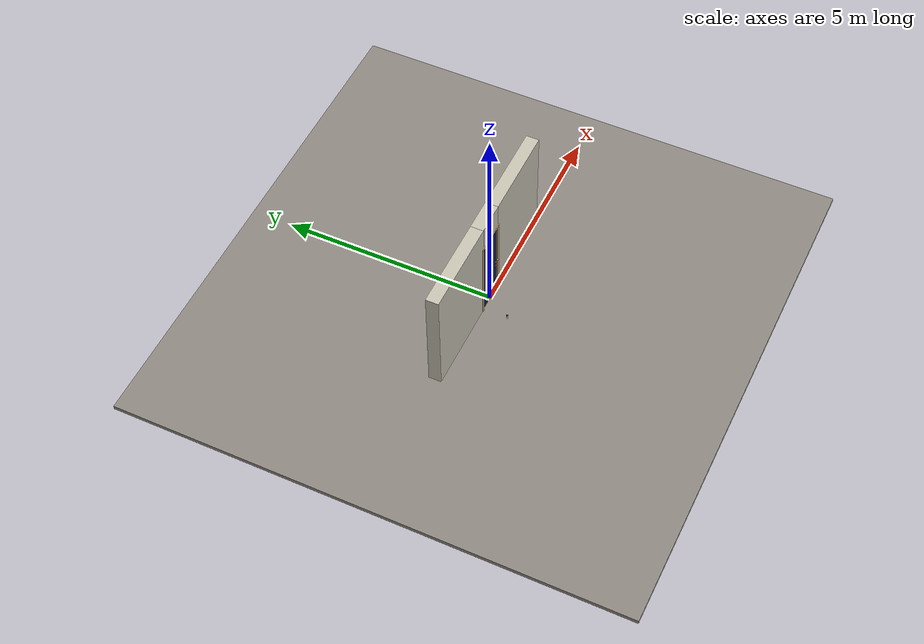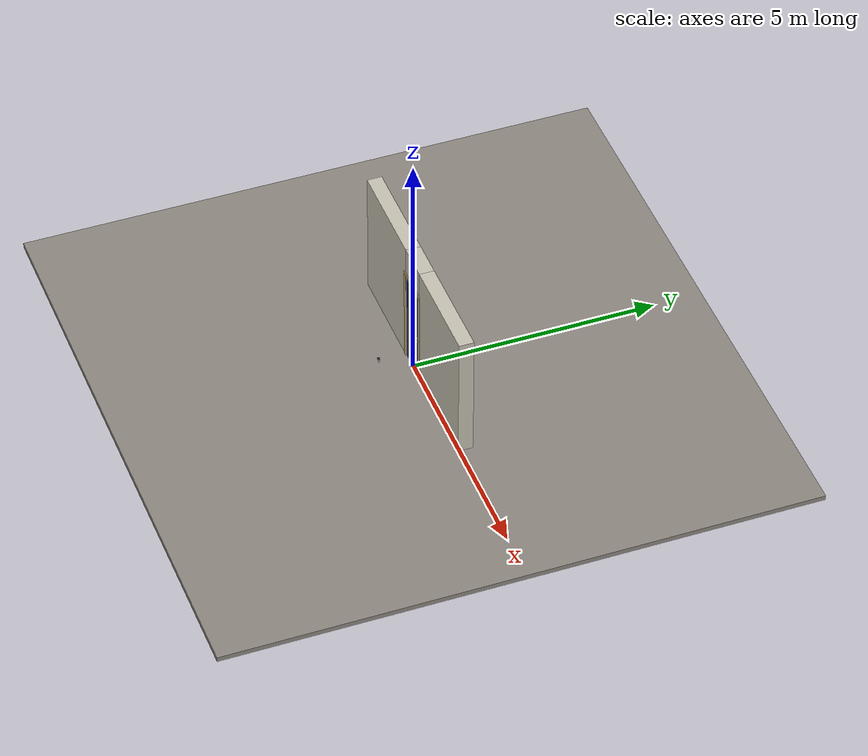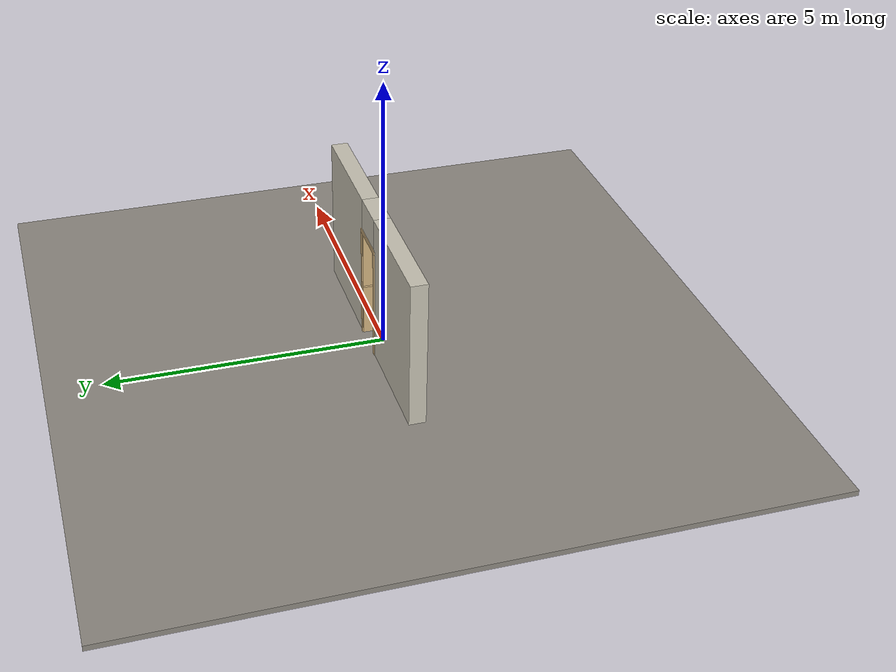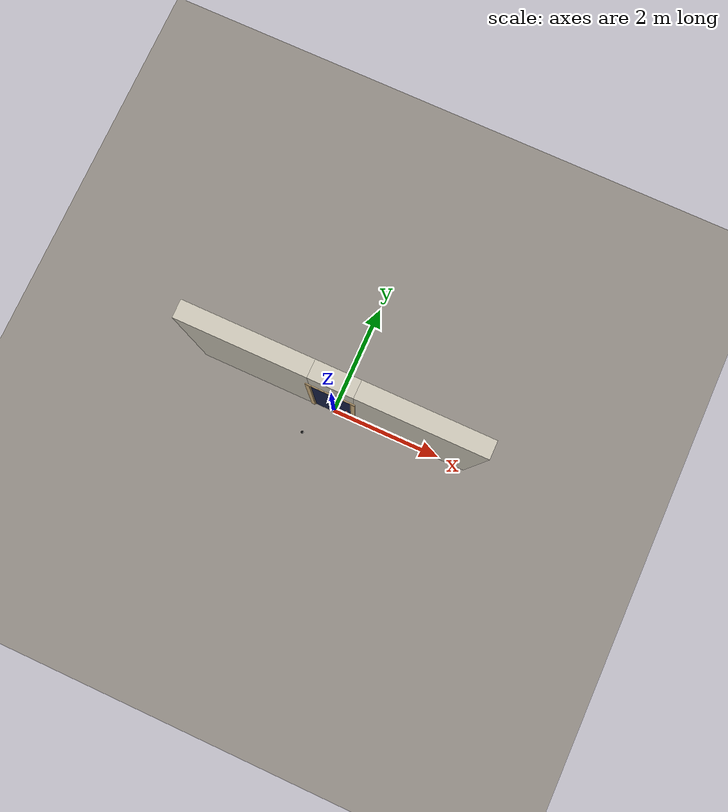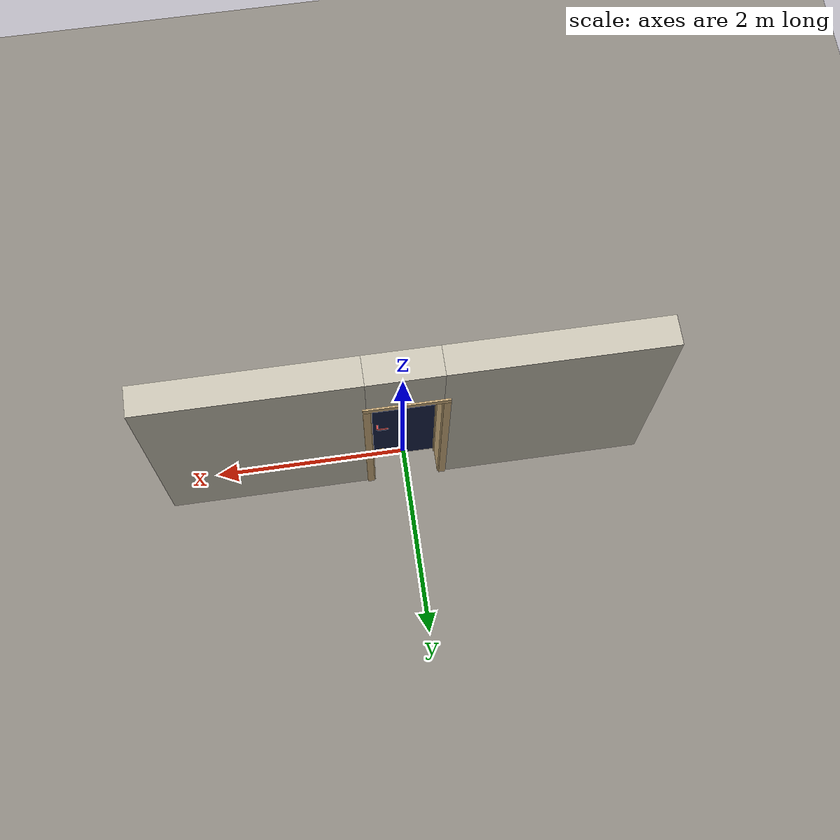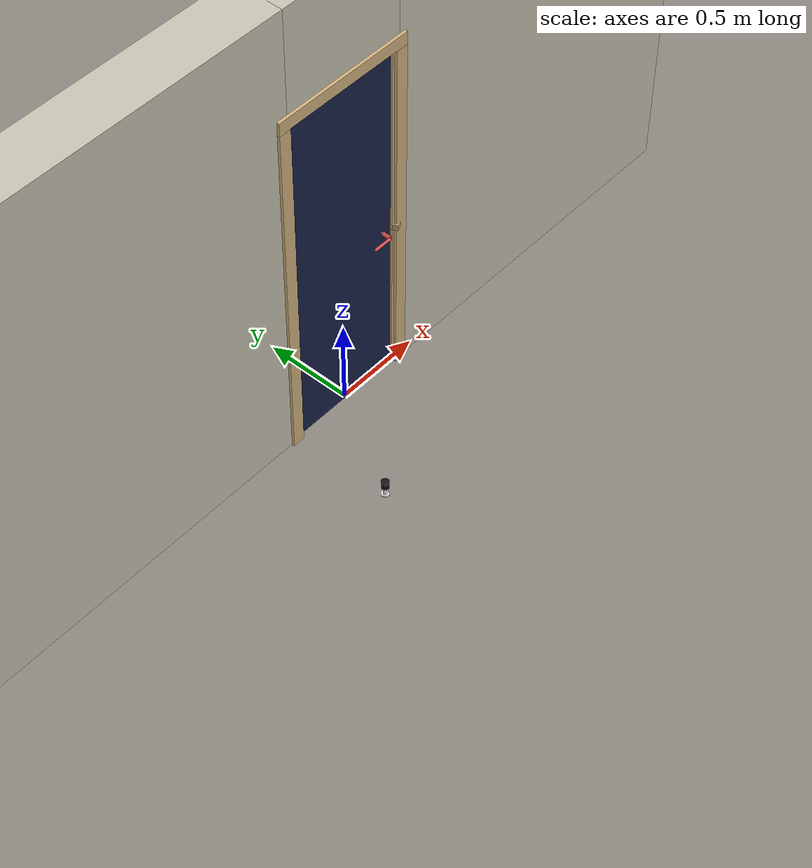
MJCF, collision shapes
<?xml version="1.0" ?>
<mujoco model="db0244_swing_single_full">
  <compiler angle="radian" meshdir="../../hardware" texturedir="../../textures" autolimits="true" inertiafromgeom="false"/>
  <option timestep="0.002" integrator="implicitfast" cone="elliptic" impratio="10" noslip_iterations="3">
    <flag multiccd="enable"/>
  </option>
  <size memory="16M"/>
  <default>
    <geom condim="4" solref="0.005 1" solimp="0.95 0.99 0.001"/>
    <joint solreflimit="0.005 1" solimplimit="0.95 0.99 0.001"/>
    <tendon solreflimit="0.005 1"/>
    <equality solref="0.002 1"/>
  </default>
  <visual>
    <headlight ambient="0.4 0.4 0.4" diffuse="0.7 0.7 0.7" specular="0.2 0.2 0.2"/>
    <quality shadowsize="4096"/>
    <map znear="0.01" zfar="60"/>
  </visual>
  <asset>
    <mesh name="hinge_96510cf394" file="hinge_96510cf394.obj"/>
    <mesh name="hinge_jamb_7fd4ca52b2" file="hinge_jamb_7fd4ca52b2.obj"/>
    <mesh name="lever_748f08efca" file="lever_748f08efca.obj"/>
    <material name="mat_floor" rgba="0.55 0.53 0.5 1" specular="0.2" shininess="0.15" reflectance="0"/>
    <material name="mat_wall" rgba="0.78 0.76 0.7 1" specular="0.2" shininess="0.1" reflectance="0"/>
    <material name="mat_leaf" rgba="0.09 0.13 0.28 1" specular="0.2" shininess="0.56" reflectance="0"/>
    <material name="mat_hinge" rgba="0.65 0.66 0.68 1" specular="0.74" shininess="0.5" reflectance="0.36"/>
    <material name="mat_op_chrome" rgba="0.9 0.9 0.92 1" specular="0.8" shininess="0.9" reflectance="0.4"/>
    <material name="mat_trim" rgba="0.85 0.66 0.3 1" specular="0.8" shininess="0.75" reflectance="0.4"/>
    <material name="mat_bolt" rgba="0.85 0.66 0.3 1" specular="0.8" shininess="0.75" reflectance="0.4"/>
    <material name="mat_frame" rgba="0.82 0.7 0.5 1" specular="0.2" shininess="0.45" reflectance="0"/>
    <material name="mat_kickdown" rgba="0.85 0.66 0.3 1" specular="0.8" shininess="0.75" reflectance="0.4"/>
    <material name="mat_kickdown_pad" rgba="0.92 0.92 0.9 1" specular="0.2" shininess="0.6" reflectance="0"/>
    <material name="mat_bumper_stop" rgba="0.08 0.08 0.08 1" specular="0.2" shininess="0.1" reflectance="0"/>
    <material name="mat_stop_base" rgba="0.9 0.9 0.92 1" specular="0.8" shininess="0.9" reflectance="0.4"/>
    <texture name="skybox" type="skybox" builtin="gradient" rgb1="0.6 0.7 0.85" rgb2="0.9 0.92 0.95" width="256" height="256"/>
  </asset>
  <worldbody>
    <light name="sun" pos="1.5 -2.5 4" dir="-0.3 0.5 -0.8" directional="true" diffuse="0.8 0.8 0.8" specular="0.3 0.3 0.3" castshadow="true"/>
    <light name="fill" pos="-1.5 2.5 3" dir="0.3 -0.5 -0.7" directional="true" diffuse="0.35 0.35 0.4" castshadow="false"/>
    <camera name="robot_view" pos="0 -2.416687 1.734312" xyaxes="1 0 0 0 0.26963 0.962964" fovy="52"/>
    <camera name="far_view" pos="0 2.667687 1.734312" xyaxes="-1 0 0 0 -0.26963 0.962964" fovy="52"/>
    <camera name="iso" pos="1.932062 -2.009937 2.141063" xyaxes="0.741536 0.670913 0 -0.242917 0.268487 0.932151" fovy="46"/>
    <camera name="detail_handle" pos="0.3599 -0.8725 1.245" xyaxes="0.97561 0.219512 0 -0.070934 0.315262 0.94635" fovy="38"/>
    <geom name="floor" type="box" size="6 6 0.05" pos="0 0 -0.05" material="mat_floor" group="0" contype="1" conaffinity="1" friction="0.8 0.005 0.0001" density="2400"/>
    <geom name="wall_left" type="box" size="1.07375 0.15 1.35" pos="-1.42625 0.1255 1.35" material="mat_wall" group="0" contype="1" conaffinity="1" friction="0.6 0.005 0.0001" density="800"/>
    <geom name="wall_right" type="box" size="1.05875 0.15 1.35" pos="1.44125 0.1255 1.35" material="mat_wall" group="0" contype="1" conaffinity="1" friction="0.6 0.005 0.0001" density="800"/>
    <geom name="wall_header" type="box" size="0.3675 0.15 0.303" pos="0.015 0.1255 2.397" material="mat_wall" group="0" contype="1" conaffinity="1" friction="0.6 0.005 0.0001" density="800"/>
    <geom name="hinge_0_jamb" type="mesh" mesh="hinge_jamb_7fd4ca52b2" pos="-0.3305 -0.0245 0.259" material="mat_hinge" group="1" contype="0" conaffinity="0" density="7850"/>
    <geom name="hinge_1_jamb" type="mesh" mesh="hinge_jamb_7fd4ca52b2" pos="-0.3305 -0.0245 1.025" material="mat_hinge" group="1" contype="0" conaffinity="0" density="7850"/>
    <geom name="hinge_2_jamb" type="mesh" mesh="hinge_jamb_7fd4ca52b2" pos="-0.3305 -0.0245 1.861" material="mat_hinge" group="1" contype="0" conaffinity="0" density="7850"/>
    <geom name="jamb_hinge" type="box" size="0.0095 0.15 1.0225" pos="-0.343 0.1255 1.0225" material="mat_frame" group="0" contype="1" conaffinity="1" friction="0.6 0.005 0.0001" density="400"/>
    <geom name="strike_965_wall_n" type="box" size="0.0245 0.133825 0.0167" pos="0.358 0.141675 0.965" material="mat_frame" group="0" contype="1" conaffinity="1" friction="0.6 0.005 0.0001" density="400"/>
    <geom name="strike_965_wall_p" type="box" size="0.0245 0.008 0.0167" pos="0.358 -0.01585 0.965" material="mat_frame" group="0" contype="1" conaffinity="1" friction="0.6 0.005 0.0001" density="400"/>
    <geom name="strike_965_ramp" type="box" size="0.0245 0.01649 0.0167" pos="0.362636 -0.028673 0.965" quat="0.977148 0 0 0.212558" material="mat_frame" group="0" contype="1" conaffinity="1" friction="0.12 0.005 0.0001" density="400"/>
    <geom name="strike_965_back" type="box" size="0.01615 0.00785 0.0167" pos="0.36635 0 0.965" material="mat_frame" group="0" contype="1" conaffinity="1" friction="0.6 0.005 0.0001" density="400"/>
    <geom name="jamb_strike_0" type="box" size="0.0245 0.15 0.47415" pos="0.358 0.1255 0.47415" material="mat_frame" group="0" contype="1" conaffinity="1" friction="0.6 0.005 0.0001" density="400"/>
    <geom name="jamb_strike_1" type="box" size="0.0245 0.15 0.53165" pos="0.358 0.1255 1.51335" material="mat_frame" group="0" contype="1" conaffinity="1" friction="0.6 0.005 0.0001" density="400"/>
    <geom name="jamb_head" type="box" size="0.3675 0.15 0.0095" pos="0.015 0.1255 2.0545" material="mat_frame" group="0" contype="1" conaffinity="1" friction="0.6 0.005 0.0001" density="400"/>
    <geom name="head_stud" type="box" size="0.3675 0.15 0.015" pos="0.015 0.1255 2.079" material="mat_wall" group="0" contype="1" conaffinity="1" friction="0.6 0.005 0.0001" density="500"/>
    <geom name="stop_hinge" type="box" size="0.0055 0.016 1.0225" pos="-0.328 0.034 1.0225" material="mat_frame" group="0" contype="1" conaffinity="1" friction="0.6 0.005 0.0001" density="400"/>
    <geom name="stop_strike" type="box" size="0.0055 0.016 1.0225" pos="0.328 0.034 1.0225" material="mat_frame" group="0" contype="1" conaffinity="1" friction="0.6 0.005 0.0001" density="400"/>
    <geom name="stop_head" type="box" size="0.3335 0.016 0.0055" pos="0 0.034 2.0395" material="mat_frame" group="0" contype="1" conaffinity="1" friction="0.6 0.005 0.0001" density="400"/>
    <geom name="casing_l_n" type="box" size="0.035 0.008 1.032" pos="-0.3825 -0.0325 1.0225" material="mat_frame" group="2" contype="0" conaffinity="0" density="400"/>
    <geom name="casing_r_n" type="box" size="0.035 0.008 1.032" pos="0.3825 -0.0325 1.0225" material="mat_frame" group="2" contype="0" conaffinity="0" density="400"/>
    <geom name="casing_h_n" type="box" size="0.4175 0.008 0.035" pos="0 -0.0325 2.094" material="mat_frame" group="2" contype="0" conaffinity="0" density="400"/>
    <geom name="casing_l_p" type="box" size="0.035 0.008 1.032" pos="-0.3825 0.2835 1.0225" material="mat_frame" group="2" contype="0" conaffinity="0" density="400"/>
    <geom name="casing_r_p" type="box" size="0.035 0.008 1.032" pos="0.3825 0.2835 1.0225" material="mat_frame" group="2" contype="0" conaffinity="0" density="400"/>
    <geom name="casing_h_p" type="box" size="0.4175 0.008 0.035" pos="0 0.2835 2.094" material="mat_frame" group="2" contype="0" conaffinity="0" density="400"/>
    <geom name="door_stop_base" type="cylinder" size="0.022 0.003" pos="-0.3465 -0.5855 0.003" material="mat_stop_base" group="0" contype="1" conaffinity="1" friction="0.6 0.005 0.0001" density="7850"/>
    <geom name="door_stop_post" type="cylinder" size="0.012 0.0245" pos="-0.3465 -0.5855 0.0305" material="mat_stop_base" group="0" contype="1" conaffinity="1" friction="0.6 0.005 0.0001" density="7850"/>
    <geom name="door_stop_bumper" type="cylinder" size="0.022 0.02" pos="-0.3465 -0.5855 0.075" material="mat_bumper_stop" group="0" contype="1" conaffinity="1" friction="0.6 0.005 0.0001" density="1100"/>
    <site name="approach_point" pos="0 -1.5 0" quat="1 0 0 0" size="0.05" rgba="0.2 0.9 0.2 0.5" group="4"/>
    <site name="goal_point" pos="0 1.5 0" quat="1 0 0 0" size="0.05" rgba="0.2 0.9 0.2 0.5" group="4"/>
    <site name="door_plane_center" pos="0 0 1.0225" quat="1 0 0 0" size="0.02" rgba="0.2 0.9 0.2 0.5" group="4"/>
    <body name="leaf" pos="-0.3335 0 0">
      <inertial pos="0.337581 0.000997 0.994549" mass="36.013174" quat="-0.497142 0.49186 0.50674 0.50412" diaginertia="1.357487911 12.920706884 14.268383611"/>
      <joint name="leaf_hinge" type="hinge" axis="0 0 -1" pos="0.003 -0.0245 0" limited="true" range="0 1.570796" damping="0.119633" frictionloss="0.901759" armature="0.02"/>
      <geom name="leaf_slab" type="box" size="0.33 0.0175 1.016" pos="0.333 0 1.025" material="mat_leaf" group="0" contype="1" conaffinity="1" friction="0.4 0.005 0.0001" density="1"/>
      <geom name="hinge_0" type="mesh" mesh="hinge_96510cf394" pos="0.003 -0.0245 0.259" material="mat_hinge" group="1" contype="0" conaffinity="0" density="7850"/>
      <geom name="hinge_1" type="mesh" mesh="hinge_96510cf394" pos="0.003 -0.0245 1.025" material="mat_hinge" group="1" contype="0" conaffinity="0" density="7850"/>
      <geom name="hinge_2" type="mesh" mesh="hinge_96510cf394" pos="0.003 -0.0245 1.861" material="mat_hinge" group="1" contype="0" conaffinity="0" density="7850"/>
      <geom name="leaf_latch_bolt_faceplate" type="box" size="0.0006 0.01235 0.0267" pos="0.6624 0 0.965" material="mat_bolt" group="1" contype="0" conaffinity="0" density="8500"/>
      <geom name="kickdown_housing" type="box" size="0.022 0.016 0.045" pos="0.563 0.0335 0.169" material="mat_kickdown" group="2" contype="0" conaffinity="0" density="8500"/>
      <geom name="kickdown_arm" type="box" size="0.012 0.006 0.045" pos="0.563 0.0295 0.104" material="mat_kickdown" group="2" contype="0" conaffinity="0" density="8500"/>
      <geom name="kickdown_pad" type="cylinder" size="0.014 0.006" pos="0.563 0.0295 0.061" material="mat_kickdown_pad" group="2" contype="0" conaffinity="0" density="1200"/>
      <site name="leaf_edge_mid" pos="0.663 0 1.016" quat="1 0 0 0" size="0.02" rgba="0.2 0.9 0.2 0.5" group="4"/>
      <body name="leaf_handle" pos="0.603 0 0.965">
        <inertial pos="-0.024417 0 0" mass="0.839807" quat="0.707107 0 0 -0.707107" diaginertia="0.001182467 0.002815434 0.003861215"/>
        <joint name="leaf_handle_hinge" type="hinge" axis="0 -1 0" limited="true" range="0 0.87" damping="0.205084" frictionloss="0.04" stiffness="0.9" springref="-0.444444" armature="0.01"/>
        <geom name="leaf_handle_spindle" type="cylinder" size="0.006 0.0255" pos="0 0 0" quat="0.707107 -0.707107 0 0" material="mat_op_chrome" group="1" contype="0" conaffinity="0" density="7850"/>
        <geom name="leaf_handle_lever_n" type="mesh" mesh="lever_748f08efca" pos="0 -0.0175 0" quat="0.707107 0.707107 0 0" material="mat_op_chrome" group="1" contype="0" conaffinity="0" density="3000"/>
        <geom name="leaf_handle_lever_col_n" type="capsule" size="0.008 0.048" pos="-0.056 -0.0725 0" quat="0.707107 0 -0.707107 0" material="mat_op_chrome" group="3" contype="1" conaffinity="1" rgba="0.8 0.3 0.3 0.25" friction="0.7 0.01 0.0001" density="3000"/>
        <geom name="leaf_handle_hub_col_n" type="cylinder" size="0.012 0.022" pos="0 -0.0475 0" quat="0.707107 -0.707107 0 0" material="mat_op_chrome" group="3" contype="1" conaffinity="1" rgba="0.8 0.3 0.3 0.25" friction="0.6 0.005 0.0001" density="3000"/>
        <geom name="leaf_handle_lever_p" type="mesh" mesh="lever_748f08efca" pos="0 0.0175 0" quat="-0.707107 0.707107 0 0" material="mat_op_chrome" group="1" contype="0" conaffinity="0" density="3000"/>
        <geom name="leaf_handle_lever_col_p" type="capsule" size="0.008 0.048" pos="-0.056 0.0725 0" quat="0.707107 0 -0.707107 0" material="mat_op_chrome" group="3" contype="1" conaffinity="1" rgba="0.8 0.3 0.3 0.25" friction="0.7 0.01 0.0001" density="3000"/>
        <geom name="leaf_handle_hub_col_p" type="cylinder" size="0.012 0.022" pos="0 0.0475 0" quat="0.707107 -0.707107 0 0" material="mat_op_chrome" group="3" contype="1" conaffinity="1" rgba="0.8 0.3 0.3 0.25" friction="0.6 0.005 0.0001" density="3000"/>
        <site name="leaf_handle_grip_n" pos="-0.0896 -0.0725 0" quat="1 0 0 0" size="0.012" rgba="0.2 0.9 0.2 0.5" group="4"/>
        <site name="leaf_handle_grip_p" pos="-0.0896 0.0725 0" quat="1 0 0 0" size="0.012" rgba="0.2 0.9 0.2 0.5" group="4"/>
      </body>
      <body name="leaf_latch_bolt" pos="0.663 0 0.965">
        <inertial pos="-0.00865 0 0" mass="0.041419" quat="0.92388 -0.382683 0 0" diaginertia="0.000000798 0.000005598 0.000005598"/>
        <joint name="leaf_latch_bolt_slide" type="slide" axis="-1 0 0" limited="true" range="0 0.0127" damping="2" frictionloss="0.3" stiffness="300" springref="-0.008333" armature="0.1"/>
        <geom name="leaf_latch_bolt_capsule" type="capsule" size="0.00635 0.015" pos="-0.00865 0 0" quat="0.707107 0 0.707107 0" material="mat_bolt" group="0" contype="1" conaffinity="1" friction="0.2 0.005 0.0001" density="8500"/>
      </body>
    </body>
  </worldbody>
  <tendon>
    <fixed name="leaf_latch_bolt_coupling" limited="true" range="0 10">
      <joint joint="leaf_latch_bolt_slide" coef="1"/>
      <joint joint="leaf_handle_hinge" coef="-0.016076"/>
    </fixed>
  </tendon>
  <sensor>
    <jointpos name="leaf_hinge_pos" joint="leaf_hinge"/>
    <jointvel name="leaf_hinge_vel" joint="leaf_hinge"/>
    <jointpos name="leaf_handle_hinge_pos" joint="leaf_handle_hinge"/>
    <jointvel name="leaf_handle_hinge_vel" joint="leaf_handle_hinge"/>
    <jointpos name="leaf_latch_bolt_slide_pos" joint="leaf_latch_bolt_slide"/>
    <jointvel name="leaf_latch_bolt_slide_vel" joint="leaf_latch_bolt_slide"/>
  </sensor>
</mujoco>
